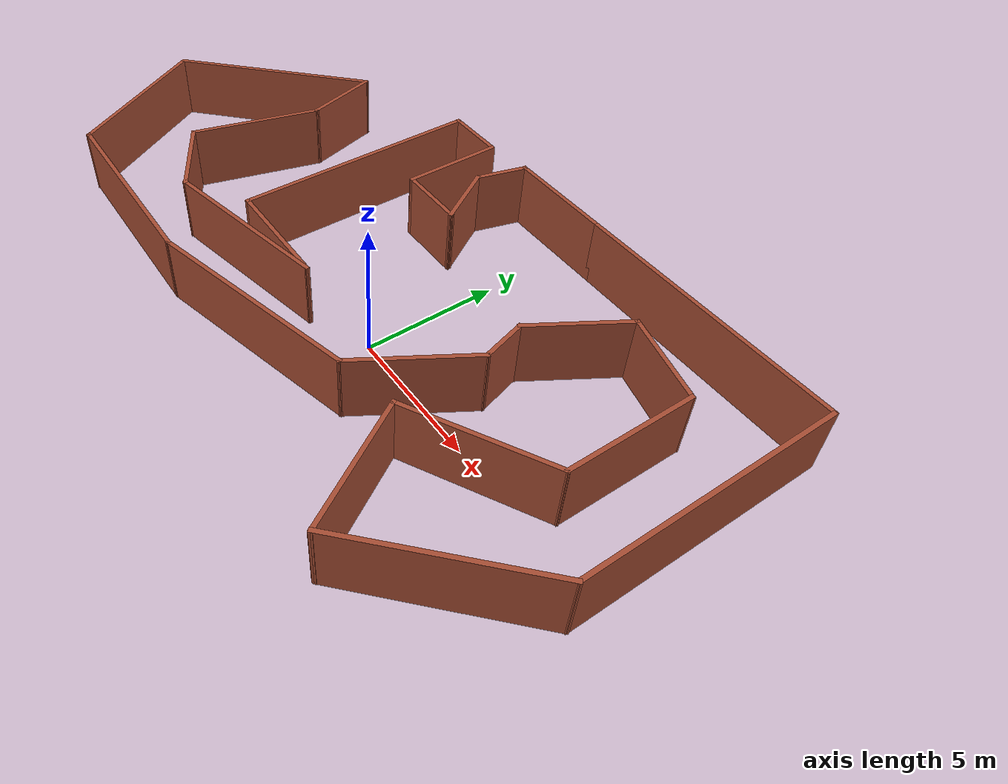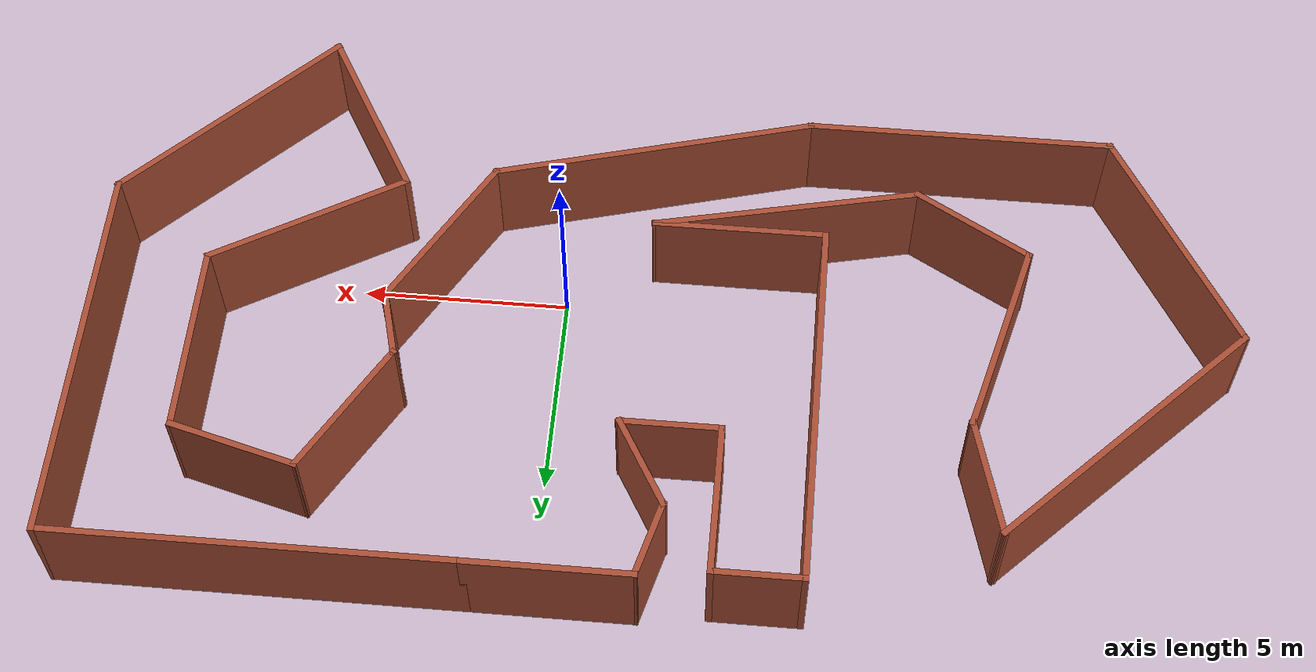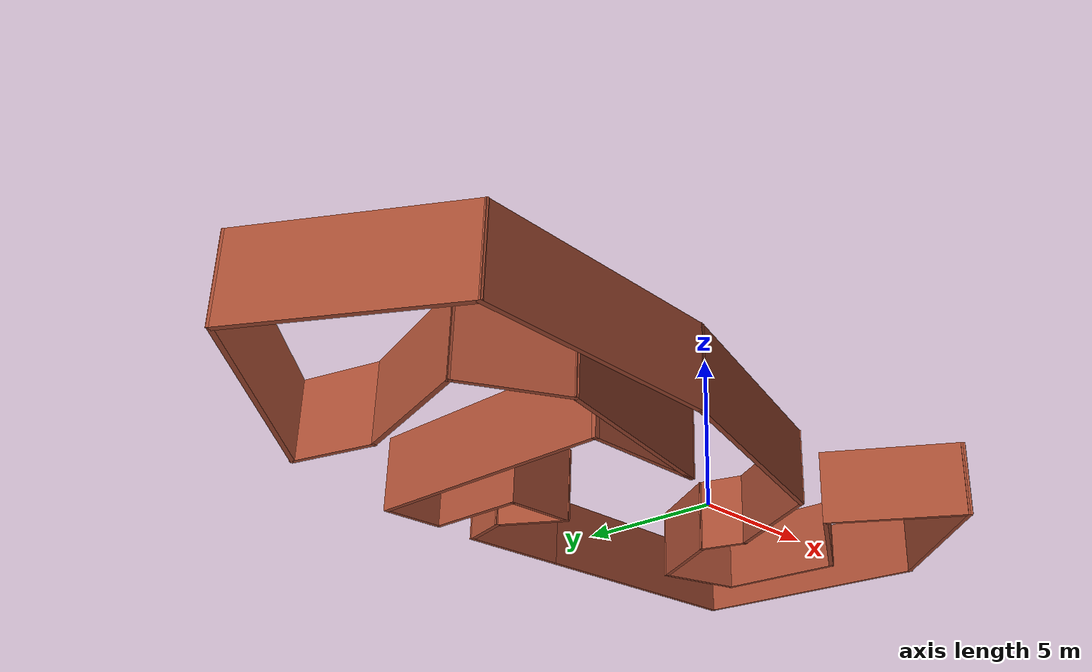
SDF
<?xml version='1.0'?>
<sdf version='1.6'>
  <model name='Lab1'>
    <pose frame=''>-2.55016 1.27656 0 0 -0 0</pose>
    <link name='Wall_0'>
      <collision name='Wall_0_Collision'>
        <geometry>
          <box>
            <size>4.25 0.15 2.5</size>
          </box>
        </geometry>
        <pose frame=''>0 0 1.25 0 -0 0</pose>
      </collision>
      <visual name='Wall_0_Visual'>
        <pose frame=''>0 0 1.25 0 -0 0</pose>
        <geometry>
          <box>
            <size>4.25 0.15 2.5</size>
          </box>
        </geometry>
        <material>
          <script>
            <uri>file://media/materials/scripts/gazebo.material</uri>
            <name>Gazebo/Bricks</name>
          </script>
          <ambient>1 1 1 1</ambient>
        </material>
      </visual>
      <pose frame=''>-1.60984 -2.30656 0 0 -0 3.14159</pose>
    </link>
    <link name='Wall_1'>
      <collision name='Wall_1_Collision'>
        <geometry>
          <box>
            <size>9.25 0.15 2.5</size>
          </box>
        </geometry>
        <pose frame=''>0 0 1.25 0 -0 0</pose>
      </collision>
      <visual name='Wall_1_Visual'>
        <pose frame=''>0 0 1.25 0 -0 0</pose>
        <geometry>
          <box>
            <size>9.25 0.15 2.5</size>
          </box>
        </geometry>
        <material>
          <script>
            <uri>file://media/materials/scripts/gazebo.material</uri>
            <name>Gazebo/Bricks</name>
          </script>
          <ambient>1 1 1 1</ambient>
        </material>
      </visual>
      <pose frame=''>-3.65984 2.24344 0 0 -0 1.5708</pose>
    </link>
    <link name='Wall_10'>
      <collision name='Wall_10_Collision'>
        <geometry>
          <box>
            <size>6.75 0.15 2.5</size>
          </box>
        </geometry>
        <pose frame=''>0 0 1.25 0 -0 0</pose>
      </collision>
      <visual name='Wall_10_Visual'>
        <pose frame=''>0 0 1.25 0 -0 0</pose>
        <geometry>
          <box>
            <size>6.75 0.15 2.5</size>
          </box>
        </geometry>
        <material>
          <script>
            <uri>file://media/materials/scripts/gazebo.material</uri>
            <name>Gazebo/Bricks</name>
          </script>
          <ambient>1 1 1 1</ambient>
        </material>
      </visual>
      <pose frame=''>11.2105 -4.66789 0 0 0 -2.35619</pose>
    </link>
    <link name='Wall_11'>
      <collision name='Wall_11_Collision'>
        <geometry>
          <box>
            <size>4.75 0.15 2.5</size>
          </box>
        </geometry>
        <pose frame=''>0 0 1.25 0 -0 0</pose>
      </collision>
      <visual name='Wall_11_Visual'>
        <pose frame=''>0 0 1.25 0 -0 0</pose>
        <geometry>
          <box>
            <size>4.75 0.15 2.5</size>
          </box>
        </geometry>
        <material>
          <script>
            <uri>file://media/materials/scripts/gazebo.material</uri>
            <name>Gazebo/Bricks</name>
          </script>
          <ambient>1 1 1 1</ambient>
        </material>
      </visual>
      <pose frame=''>7.72707 -5.00949 0 0 -0 2.0944</pose>
    </link>
    <link name='Wall_12'>
      <collision name='Wall_12_Collision'>
        <geometry>
          <box>
            <size>5.25 0.15 2.5</size>
          </box>
        </geometry>
        <pose frame=''>0 0 1.25 0 -0 0</pose>
      </collision>
      <visual name='Wall_12_Visual'>
        <pose frame=''>0 0 1.25 0 -0 0</pose>
        <geometry>
          <box>
            <size>5.25 0.15 2.5</size>
          </box>
        </geometry>
        <material>
          <script>
            <uri>file://media/materials/scripts/gazebo.material</uri>
            <name>Gazebo/Bricks</name>
          </script>
          <ambient>1 1 1 1</ambient>
        </material>
      </visual>
      <pose frame=''>8.78544 -1.74263 0 0 -0 0.523599</pose>
    </link>
    <link name='Wall_13'>
      <collision name='Wall_13_Collision'>
        <geometry>
          <box>
            <size>4.75 0.15 2.5</size>
          </box>
        </geometry>
        <pose frame=''>0 0 1.25 0 -0 0</pose>
      </collision>
      <visual name='Wall_13_Visual'>
        <pose frame=''>0 0 1.25 0 -0 0</pose>
        <geometry>
          <box>
            <size>4.75 0.15 2.5</size>
          </box>
        </geometry>
        <material>
          <script>
            <uri>file://media/materials/scripts/gazebo.material</uri>
            <name>Gazebo/Bricks</name>
          </script>
          <ambient>1 1 1 1</ambient>
        </material>
      </visual>
      <pose frame=''>10.9938 1.83237 0 0 -0 1.5708</pose>
    </link>
    <link name='Wall_14'>
      <collision name='Wall_14_Collision'>
        <geometry>
          <box>
            <size>3.25 0.15 2.5</size>
          </box>
        </geometry>
        <pose frame=''>0 0 1.25 0 -0 0</pose>
      </collision>
      <visual name='Wall_14_Visual'>
        <pose frame=''>0 0 1.25 0 -0 0</pose>
        <geometry>
          <box>
            <size>3.25 0.15 2.5</size>
          </box>
        </geometry>
        <material>
          <script>
            <uri>file://media/materials/scripts/gazebo.material</uri>
            <name>Gazebo/Bricks</name>
          </script>
          <ambient>1 1 1 1</ambient>
        </material>
      </visual>
      <pose frame=''>9.49662 4.53354 0 0 -0 2.87979</pose>
    </link>
    <link name='Wall_15'>
      <collision name='Wall_15_Collision'>
        <geometry>
          <box>
            <size>3.75 0.15 2.5</size>
          </box>
        </geometry>
        <pose frame=''>0 0 1.25 0 -0 0</pose>
      </collision>
      <visual name='Wall_15_Visual'>
        <pose frame=''>0 0 1.25 0 -0 0</pose>
        <geometry>
          <box>
            <size>3.75 0.15 2.5</size>
          </box>
        </geometry>
        <material>
          <script>
            <uri>file://media/materials/scripts/gazebo.material</uri>
            <name>Gazebo/Bricks</name>
          </script>
          <ambient>1 1 1 1</ambient>
        </material>
      </visual>
      <pose frame=''>7.09943 3.37586 0 0 0 -2.0944</pose>
    </link>
    <link name='Wall_16'>
      <collision name='Wall_16_Collision'>
        <geometry>
          <box>
            <size>1.75 0.15 2.5</size>
          </box>
        </geometry>
        <pose frame=''>0 0 1.25 0 -0 0</pose>
      </collision>
      <visual name='Wall_16_Visual'>
        <pose frame=''>0 0 1.25 0 -0 0</pose>
        <geometry>
          <box>
            <size>1.75 0.15 2.5</size>
          </box>
        </geometry>
        <material>
          <script>
            <uri>file://media/materials/scripts/gazebo.material</uri>
            <name>Gazebo/Bricks</name>
          </script>
          <ambient>1 1 1 1</ambient>
        </material>
      </visual>
      <pose frame=''>6.40649 1.04428 0 0 0 -1.309</pose>
    </link>
    <link name='Wall_17'>
      <collision name='Wall_17_Collision'>
        <geometry>
          <box>
            <size>4.5 0.15 2.5</size>
          </box>
        </geometry>
        <pose frame=''>0 0 1.25 0 -0 0</pose>
      </collision>
      <visual name='Wall_17_Visual'>
        <pose frame=''>0 0 1.25 0 -0 0</pose>
        <geometry>
          <box>
            <size>4.5 0.15 2.5</size>
          </box>
        </geometry>
        <material>
          <script>
            <uri>file://media/materials/scripts/gazebo.material</uri>
            <name>Gazebo/Bricks</name>
          </script>
          <ambient>1 1 1 1</ambient>
        </material>
      </visual>
      <pose frame=''>5.52604 -1.61207 0 0 0 -2.0944</pose>
    </link>
    <link name='Wall_18'>
      <collision name='Wall_18_Collision'>
        <geometry>
          <box>
            <size>8 0.15 2.5</size>
          </box>
        </geometry>
        <pose frame=''>0 0 1.25 0 -0 0</pose>
      </collision>
      <visual name='Wall_18_Visual'>
        <pose frame=''>0 0 1.25 0 -0 0</pose>
        <geometry>
          <box>
            <size>8 0.15 2.5</size>
          </box>
        </geometry>
        <material>
          <script>
            <uri>file://media/materials/scripts/gazebo.material</uri>
            <name>Gazebo/Bricks</name>
          </script>
          <ambient>1 1 1 1</ambient>
        </material>
      </visual>
      <pose frame=''>0.647282 -4.51154 0 0 0 -2.87979</pose>
    </link>
    <link name='Wall_19'>
      <collision name='Wall_19_Collision'>
        <geometry>
          <box>
            <size>7.5 0.15 2.5</size>
          </box>
        </geometry>
        <pose frame=''>0 0 1.25 0 -0 0</pose>
      </collision>
      <visual name='Wall_19_Visual'>
        <pose frame=''>0 0 1.25 0 -0 0</pose>
        <geometry>
          <box>
            <size>7.5 0.15 2.5</size>
          </box>
        </geometry>
        <material>
          <script>
            <uri>file://media/materials/scripts/gazebo.material</uri>
            <name>Gazebo/Bricks</name>
          </script>
          <ambient>1 1 1 1</ambient>
        </material>
      </visual>
      <pose frame=''>-6.81898 -5.5274 0 0 -0 3.14159</pose>
    </link>
    <link name='Wall_2'>
      <collision name='Wall_2_Collision'>
        <geometry>
          <box>
            <size>2.25 0.15 2.5</size>
          </box>
        </geometry>
        <pose frame=''>0 0 1.25 0 -0 0</pose>
      </collision>
      <visual name='Wall_2_Visual'>
        <pose frame=''>0 0 1.25 0 -0 0</pose>
        <geometry>
          <box>
            <size>2.25 0.15 2.5</size>
          </box>
        </geometry>
        <material>
          <script>
            <uri>file://media/materials/scripts/gazebo.material</uri>
            <name>Gazebo/Bricks</name>
          </script>
          <ambient>1 1 1 1</ambient>
        </material>
      </visual>
      <pose frame=''>-2.60984 6.79343 0 0 -0 0</pose>
    </link>
    <link name='Wall_20'>
      <collision name='Wall_20_Collision'>
        <geometry>
          <box>
            <size>6.25 0.15 2.5</size>
          </box>
        </geometry>
        <pose frame=''>0 0 1.25 0 -0 0</pose>
      </collision>
      <visual name='Wall_20_Visual'>
        <pose frame=''>0 0 1.25 0 -0 0</pose>
        <geometry>
          <box>
            <size>6.25 0.15 2.5</size>
          </box>
        </geometry>
        <material>
          <script>
            <uri>file://media/materials/scripts/gazebo.material</uri>
            <name>Gazebo/Bricks</name>
          </script>
          <ambient>1 1 1 1</ambient>
        </material>
      </visual>
      <pose frame=''>-12.019 -2.88603 0 0 -0 2.0944</pose>
    </link>
    <link name='Wall_21'>
      <collision name='Wall_21_Collision'>
        <geometry>
          <box>
            <size>8 0.15 2.5</size>
          </box>
        </geometry>
        <pose frame=''>0 0 1.25 0 -0 0</pose>
      </collision>
      <visual name='Wall_21_Visual'>
        <pose frame=''>0 0 1.25 0 -0 0</pose>
        <geometry>
          <box>
            <size>8 0.15 2.5</size>
          </box>
        </geometry>
        <material>
          <script>
            <uri>file://media/materials/scripts/gazebo.material</uri>
            <name>Gazebo/Bricks</name>
          </script>
          <ambient>1 1 1 1</ambient>
        </material>
      </visual>
      <pose frame=''>-10.7686 2.53075 0 0 -0 0.785398</pose>
    </link>
    <link name='Wall_22'>
      <collision name='Wall_22_Collision'>
        <geometry>
          <box>
            <size>3 0.15 2.5</size>
          </box>
        </geometry>
        <pose frame=''>0 0 1.25 0 -0 0</pose>
      </collision>
      <visual name='Wall_22_Visual'>
        <pose frame=''>0 0 1.25 0 -0 0</pose>
        <geometry>
          <box>
            <size>3 0.15 2.5</size>
          </box>
        </geometry>
        <material>
          <script>
            <uri>file://media/materials/scripts/gazebo.material</uri>
            <name>Gazebo/Bricks</name>
          </script>
          <ambient>1 1 1 1</ambient>
        </material>
      </visual>
      <pose frame=''>-7.62437 3.9297 0 0 0 -1.309</pose>
    </link>
    <link name='Wall_23'>
      <collision name='Wall_23_Collision'>
        <geometry>
          <box>
            <size>5 0.15 2.5</size>
          </box>
        </geometry>
        <pose frame=''>0 0 1.25 0 -0 0</pose>
      </collision>
      <visual name='Wall_23_Visual'>
        <pose frame=''>0 0 1.25 0 -0 0</pose>
        <geometry>
          <box>
            <size>5 0.15 2.5</size>
          </box>
        </geometry>
        <material>
          <script>
            <uri>file://media/materials/scripts/gazebo.material</uri>
            <name>Gazebo/Bricks</name>
          </script>
          <ambient>1 1 1 1</ambient>
        </material>
      </visual>
      <pose frame=''>-7.88319 0.210881 0 0 0 -1.8326</pose>
    </link>
    <link name='Wall_24'>
      <collision name='Wall_24_Collision'>
        <geometry>
          <box>
            <size>3.25 0.15 2.5</size>
          </box>
        </geometry>
        <pose frame=''>0 0 1.25 0 -0 0</pose>
      </collision>
      <visual name='Wall_24_Visual'>
        <pose frame=''>0 0 1.25 0 -0 0</pose>
        <geometry>
          <box>
            <size>3.25 0.15 2.5</size>
          </box>
        </geometry>
        <material>
          <script>
            <uri>file://media/materials/scripts/gazebo.material</uri>
            <name>Gazebo/Bricks</name>
          </script>
          <ambient>1 1 1 1</ambient>
        </material>
      </visual>
      <pose frame=''>-7.16849 -2.90649 0 0 0 -0.523599</pose>
    </link>
    <link name='Wall_25'>
      <collision name='Wall_25_Collision'>
        <geometry>
          <box>
            <size>6.56538 0.15 2.5</size>
          </box>
        </geometry>
        <pose frame=''>0 0 1.25 0 -0 0</pose>
      </collision>
      <visual name='Wall_25_Visual'>
        <pose frame=''>0 0 1.25 0 -0 0</pose>
        <geometry>
          <box>
            <size>6.56538 0.15 2.5</size>
          </box>
        </geometry>
        <material>
          <script>
            <uri>file://media/materials/scripts/gazebo.material</uri>
            <name>Gazebo/Bricks</name>
          </script>
          <ambient>1 1 1 1</ambient>
        </material>
      </visual>
      <pose frame=''>-2.69299 -2.99403 0 0 -0 0.215993</pose>
    </link>
    <link name='Wall_3'>
      <collision name='Wall_3_Collision'>
        <geometry>
          <box>
            <size>3.75 0.15 2.5</size>
          </box>
        </geometry>
        <pose frame=''>0 0 1.25 0 -0 0</pose>
      </collision>
      <visual name='Wall_3_Visual'>
        <pose frame=''>0 0 1.25 0 -0 0</pose>
        <geometry>
          <box>
            <size>3.75 0.15 2.5</size>
          </box>
        </geometry>
        <material>
          <script>
            <uri>file://media/materials/scripts/gazebo.material</uri>
            <name>Gazebo/Bricks</name>
          </script>
          <ambient>1 1 1 1</ambient>
        </material>
      </visual>
      <pose frame=''>-1.55984 4.99344 0 0 0 -1.5708</pose>
    </link>
    <link name='Wall_4'>
      <collision name='Wall_4_Collision'>
        <geometry>
          <box>
            <size>2.5 0.15 2.5</size>
          </box>
        </geometry>
        <pose frame=''>0 0 1.25 0 -0 0</pose>
      </collision>
      <visual name='Wall_4_Visual'>
        <pose frame=''>0 0 1.25 0 -0 0</pose>
        <geometry>
          <box>
            <size>2.5 0.15 2.5</size>
          </box>
        </geometry>
        <material>
          <script>
            <uri>file://media/materials/scripts/gazebo.material</uri>
            <name>Gazebo/Bricks</name>
          </script>
          <ambient>1 1 1 1</ambient>
        </material>
      </visual>
      <pose frame=''>-0.38484 3.19344 0 0 -0 0</pose>
    </link>
    <link name='Wall_5'>
      <collision name='Wall_5_Collision'>
        <geometry>
          <box>
            <size>2.5 0.15 2.5</size>
          </box>
        </geometry>
        <pose frame=''>0 0 1.25 0 -0 0</pose>
      </collision>
      <visual name='Wall_5_Visual'>
        <pose frame=''>0 0 1.25 0 -0 0</pose>
        <geometry>
          <box>
            <size>2.5 0.15 2.5</size>
          </box>
        </geometry>
        <material>
          <script>
            <uri>file://media/materials/scripts/gazebo.material</uri>
            <name>Gazebo/Bricks</name>
          </script>
          <ambient>1 1 1 1</ambient>
        </material>
      </visual>
      <pose frame=''>0.20266 4.21101 0 0 -0 2.0944</pose>
    </link>
    <link name='Wall_6'>
      <collision name='Wall_6_Collision'>
        <geometry>
          <box>
            <size>2 0.15 2.5</size>
          </box>
        </geometry>
        <pose frame=''>0 0 1.25 0 -0 0</pose>
      </collision>
      <visual name='Wall_6_Visual'>
        <pose frame=''>0 0 1.25 0 -0 0</pose>
        <geometry>
          <box>
            <size>2 0.15 2.5</size>
          </box>
        </geometry>
        <material>
          <script>
            <uri>file://media/materials/scripts/gazebo.material</uri>
            <name>Gazebo/Bricks</name>
          </script>
          <ambient>1 1 1 1</ambient>
        </material>
      </visual>
      <pose frame=''>-0.145432 6.12208 0 0 -0 1.309</pose>
    </link>
    <link name='Wall_7'>
      <collision name='Wall_7_Collision'>
        <geometry>
          <box>
            <size>4 0.15 2.5</size>
          </box>
        </geometry>
        <pose frame=''>0 0 1.25 0 -0 0</pose>
      </collision>
      <visual name='Wall_7_Visual'>
        <pose frame=''>0 0 1.25 0 -0 0</pose>
        <geometry>
          <box>
            <size>4 0.15 2.5</size>
          </box>
        </geometry>
        <material>
          <script>
            <uri>file://media/materials/scripts/gazebo.material</uri>
            <name>Gazebo/Bricks</name>
          </script>
          <ambient>1 1 1 1</ambient>
        </material>
      </visual>
      <pose frame=''>2.01898 7.01556 0 0 -0 0</pose>
    </link>
    <link name='Wall_8'>
      <collision name='Wall_8_Collision'>
        <geometry>
          <box>
            <size>9.75 0.15 2.5</size>
          </box>
        </geometry>
        <pose frame=''>0 0 1.25 0 -0 0</pose>
      </collision>
      <visual name='Wall_8_Visual'>
        <pose frame=''>0 0 1.25 0 -0 0</pose>
        <geometry>
          <box>
            <size>9.75 0.15 2.5</size>
          </box>
        </geometry>
        <material>
          <script>
            <uri>file://media/materials/scripts/gazebo.material</uri>
            <name>Gazebo/Bricks</name>
          </script>
          <ambient>1 1 1 1</ambient>
        </material>
      </visual>
      <pose frame=''>8.74398 7.01556 0 0 -0 0</pose>
    </link>
    <link name='Wall_9'>
      <collision name='Wall_9_Collision'>
        <geometry>
          <box>
            <size>9.5 0.15 2.5</size>
          </box>
        </geometry>
        <pose frame=''>0 0 1.25 0 -0 0</pose>
      </collision>
      <visual name='Wall_9_Visual'>
        <pose frame=''>0 0 1.25 0 -0 0</pose>
        <geometry>
          <box>
            <size>9.5 0.15 2.5</size>
          </box>
        </geometry>
        <material>
          <script>
            <uri>file://media/materials/scripts/gazebo.material</uri>
            <name>Gazebo/Bricks</name>
          </script>
          <ambient>1 1 1 1</ambient>
        </material>
      </visual>
      <pose frame=''>13.544 2.34056 0 0 0 -1.5708</pose>
    </link>
    <static>1</static>
  </model>
</sdf>
